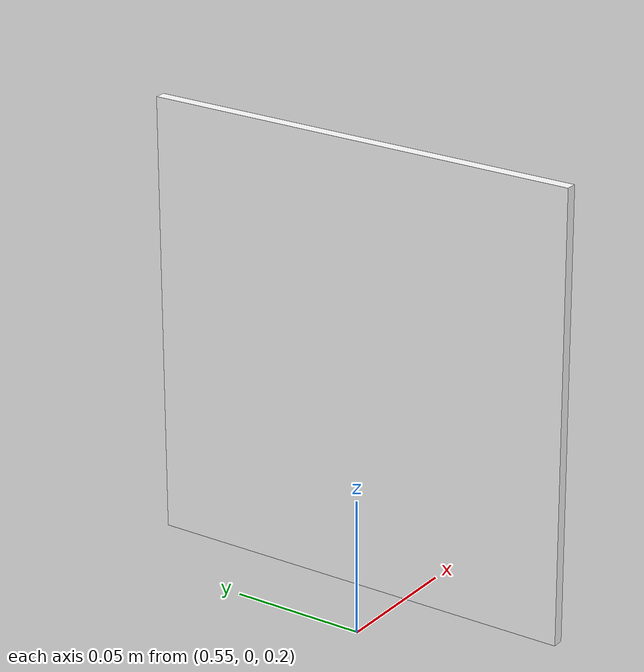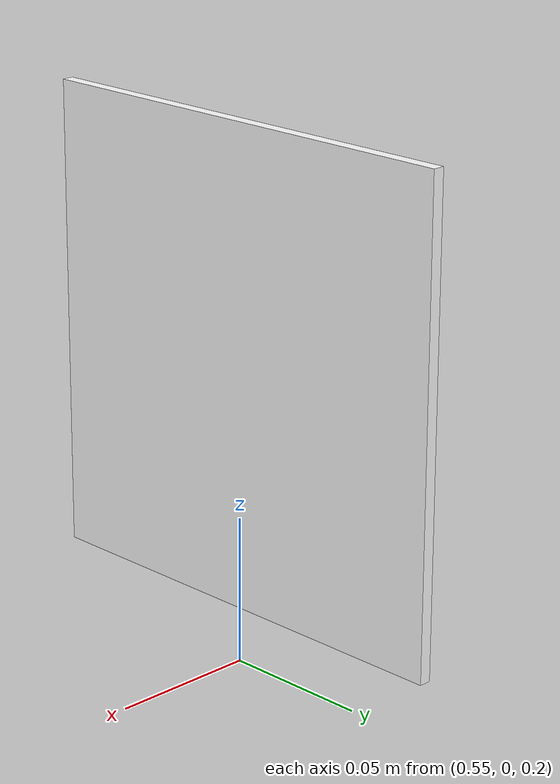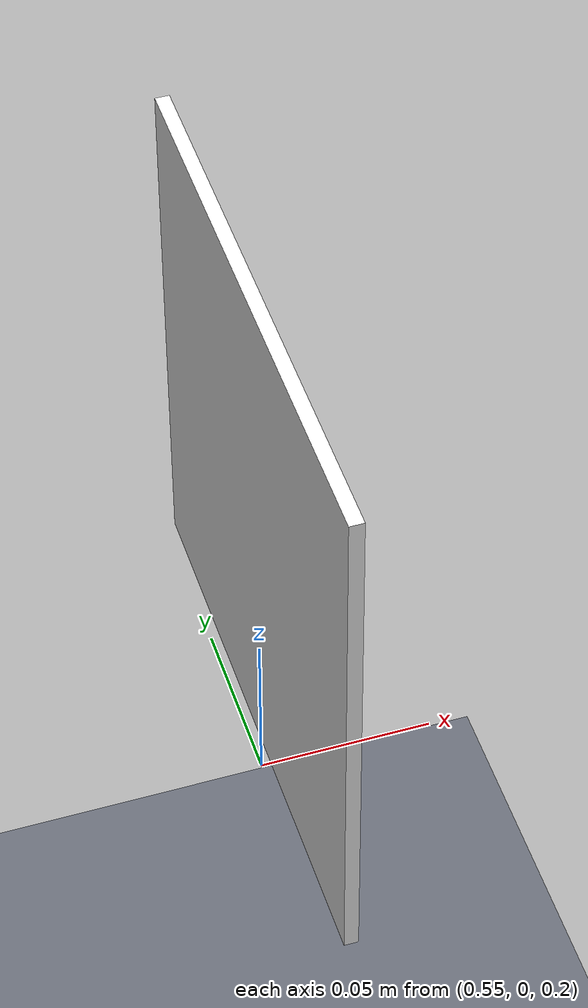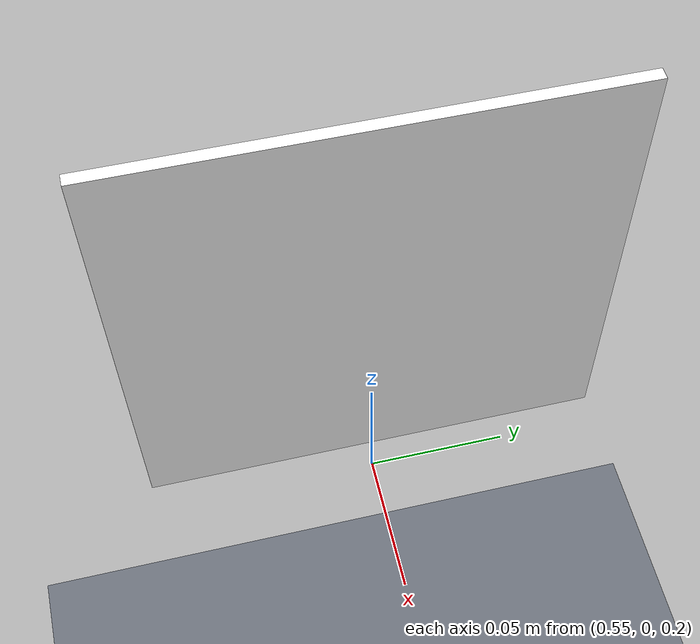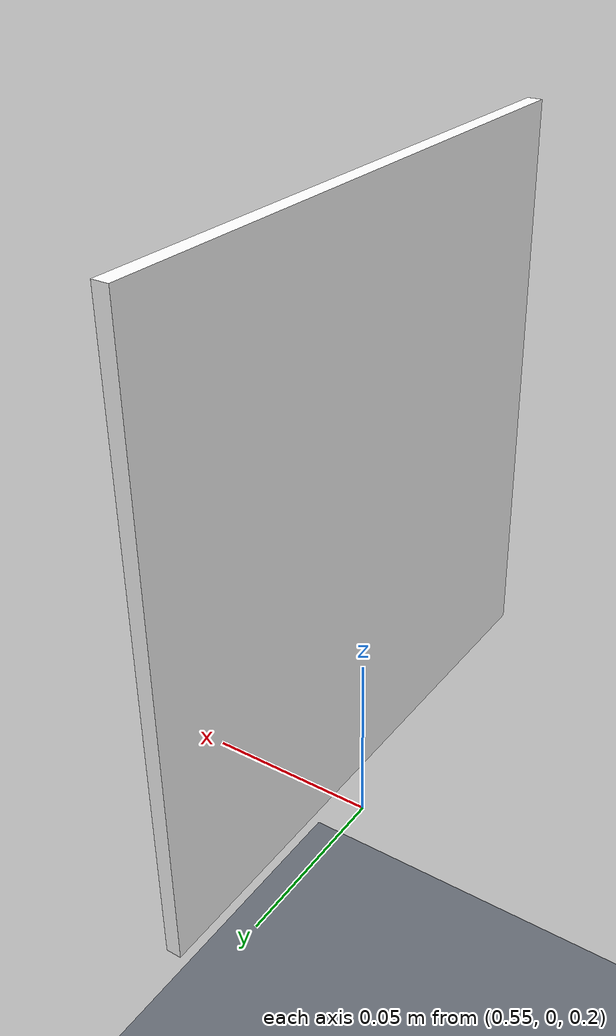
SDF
<?xml version="1.0"?>
<sdf version="1.10">
  <world name="blindspot">
    <physics name="1ms" type="ignored">
      <max_step_size>0.002</max_step_size>
      <real_time_factor>1.0</real_time_factor>
    </physics>
    <plugin filename="gz-sim-physics-system" name="gz::sim::systems::Physics"/>
    <plugin filename="gz-sim-user-commands-system" name="gz::sim::systems::UserCommands"/>
    <plugin filename="gz-sim-scene-broadcaster-system" name="gz::sim::systems::SceneBroadcaster"/>
    <plugin filename="gz-sim-sensors-system" name="gz::sim::systems::Sensors">
      <render_engine>ogre2</render_engine>
    </plugin>

    <light type="directional" name="sun">
      <cast_shadows>false</cast_shadows>
      <pose>0 0 10 0 0 0</pose>
      <diffuse>0.9 0.9 0.9 1</diffuse>
      <specular>0.1 0.1 0.1 1</specular>
      <direction>-0.3 0.2 -0.9</direction>
    </light>
    <light type="point" name="fill">
      <pose>0.6 0 1.2 0 0 0</pose>
      <diffuse>0.6 0.6 0.6 1</diffuse>
      <attenuation><range>8</range><linear>0.2</linear></attenuation>
    </light>

    <model name="ground_plane">
      <static>true</static>
      <link name="link">
        <collision name="c"><geometry><plane><normal>0 0 1</normal><size>20 20</size></plane></geometry></collision>
        <visual name="v">
          <geometry><plane><normal>0 0 1</normal><size>20 20</size></plane></geometry>
          <material><ambient>0.35 0.36 0.4 1</ambient><diffuse>0.4 0.42 0.46 1</diffuse></material>
        </visual>
      </link>
    </model>

    <model name="target_plate">
      <static>true</static>
      <pose>0.55 0.0 0.30 0 0 0</pose>
      <link name="plate">
        <visual name="v">
          <geometry><box><size>0.004 0.16 0.16</size></box></geometry>
          <material><ambient>0.95 0.95 0.95 1</ambient><diffuse>1 1 1 1</diffuse></material>
        </visual>
        <collision name="c"><geometry><box><size>0.004 0.16 0.16</size></box></geometry></collision>
      </link>
    </model>
  </world>
</sdf>
